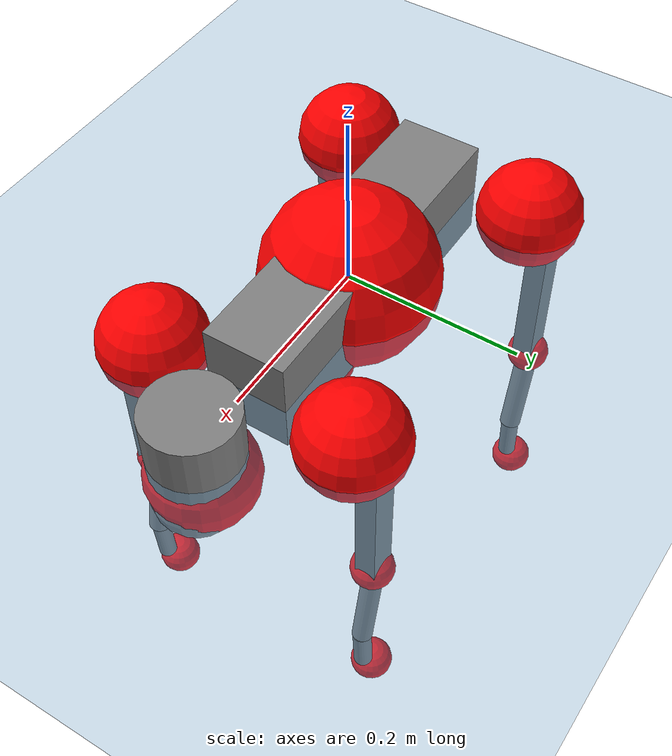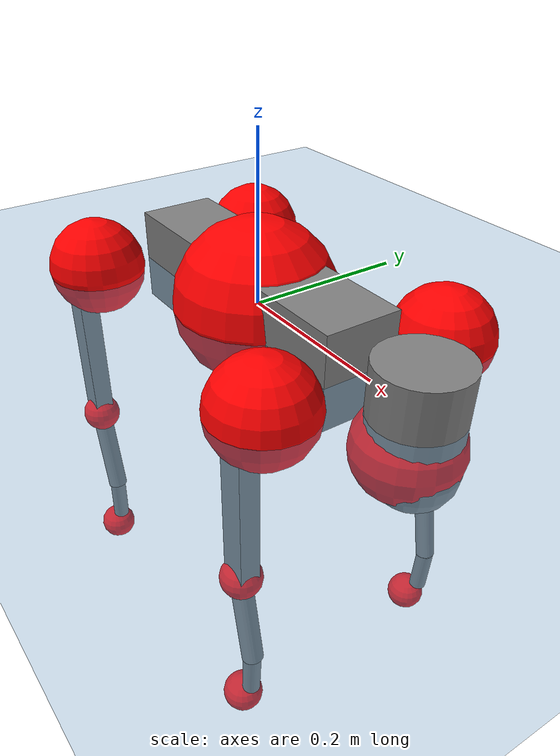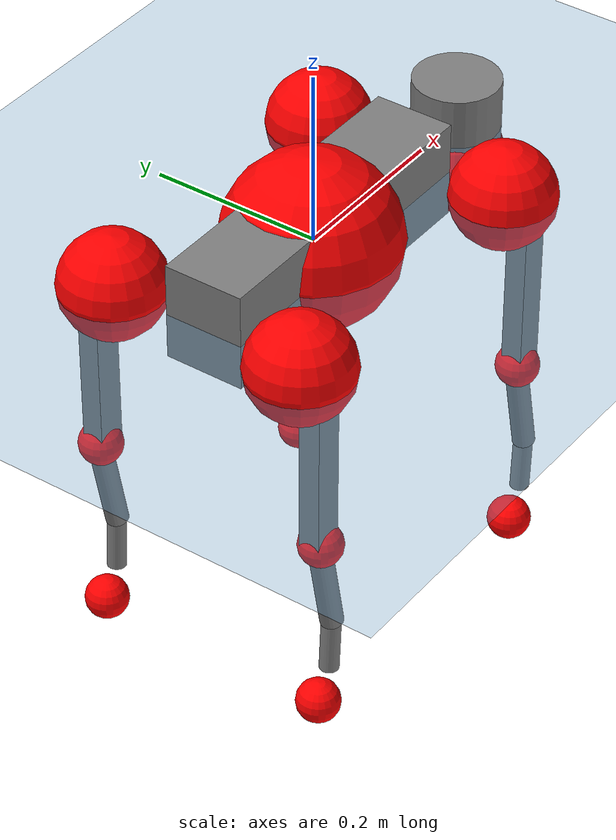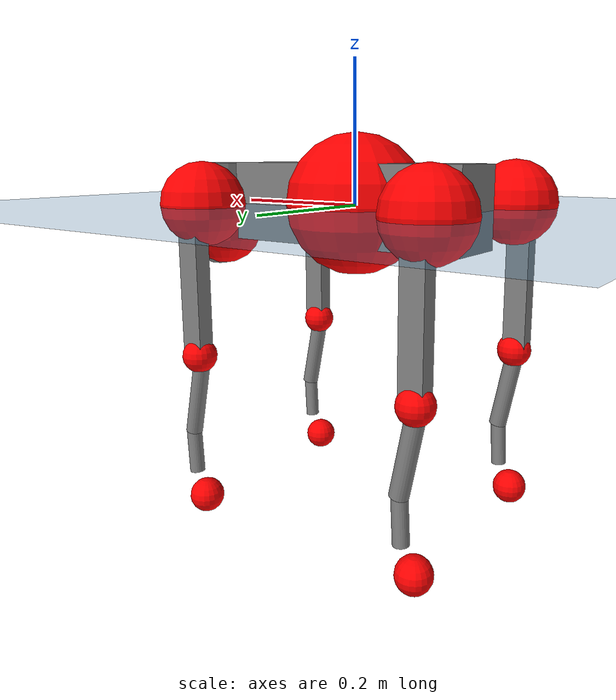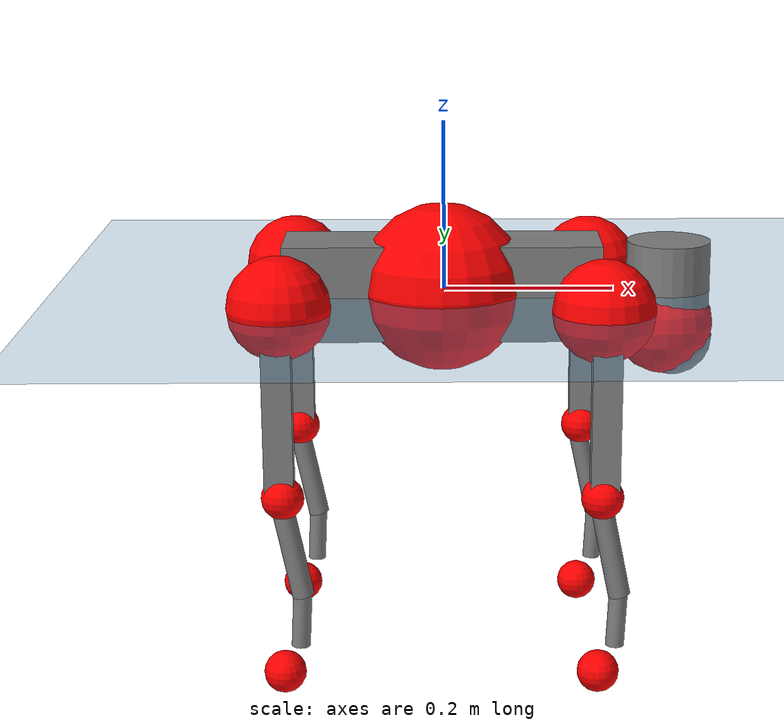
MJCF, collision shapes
<mujoco model="go2">
  <compiler angle="radian" assetdir="assets" balanceinertia="true" inertiafromgeom="false"/>

  <option timestep="0.005" density="1.2" viscosity="2e-05"/>

  <size nkey="1"/>

  <visual>
    <quality shadowsize="8192"/>
    <map shadowclip="0.5"/>
  </visual>

  <default>
    <default class="/">
      <geom contype="0" conaffinity="0" group="1" solref="-1000 -80"/>
      <site size="0.01 0.005 0.005" group="5"/>
      <general forcelimited="true" biastype="affine" gainprm="20" biasprm="0 -20 -0.5"/>
      <default class="go2">
        <joint armature="0.01" damping="0.01" frictionloss="0.2"/>
        <geom condim="1" margin="0.001"/>
        <default class="visual">
          <geom type="mesh" group="2"/>
        </default>
        <default class="collision">
          <geom group="3"/>
          <default class="foot">
            <geom size="0.022 0 0" condim="6" priority="1" friction="0.8 0.02 0.01" solimp="0.015 1 0.022"/>
          </default>
        </default>
        <default class="reward_collision_sphere">
          <geom group="5" rgba="1 0 0 1"/>
        </default>
      </default>
    </default>
  </default>

  <asset>
    <texture type="skybox" colorspace="auto" name="//unnamed_texture_0" builtin="gradient" rgb1="0.95 0.95 0.95" rgb2="0.95 0.95 0.95" width="100" height="600"/>
    <texture type="2d" colorspace="auto" name="texplane" builtin="checker" rgb1="0.345 0.575 0.748" rgb2="0.345 0.575 0.748" markrgb="1 1 1" width="512" height="512"/>
    <material name="MatPlane" class="/" texture="texplane" texuniform="true" texrepeat="2 2" specular="0.9"/>
    <material name="metal" class="/" rgba="0.9 0.95 0.95 1"/>
    <material name="black" class="/" rgba="0 0 0 1"/>
    <material name="white" class="/"/>
    <material name="gray" class="/" rgba="0.671705 0.692426 0.77427 1"/>
    <mesh name="base_0" class="/" file="base_0.obj"/>
    <mesh name="base_1" class="/" file="base_1.obj"/>
    <mesh name="base_2" class="/" file="base_2.obj"/>
    <mesh name="base_3" class="/" file="base_3.obj"/>
    <mesh name="base_4" class="/" file="base_4.obj"/>
    <mesh name="hip_0" class="/" file="hip_0.obj"/>
    <mesh name="hip_1" class="/" file="hip_1.obj"/>
    <mesh name="thigh_0" class="/" file="thigh_0.obj"/>
    <mesh name="thigh_1" class="/" file="thigh_1.obj"/>
    <mesh name="thigh_mirror_0" class="/" file="thigh_mirror_0.obj"/>
    <mesh name="thigh_mirror_1" class="/" file="thigh_mirror_1.obj"/>
    <mesh name="calf_0" class="/" file="calf_0.obj"/>
    <mesh name="calf_1" class="/" file="calf_1.obj"/>
    <mesh name="calf_mirror_0" class="/" file="calf_mirror_0.obj"/>
    <mesh name="calf_mirror_1" class="/" file="calf_mirror_1.obj"/>
    <mesh name="foot" class="/" file="foot.obj"/>
  </asset>

  <worldbody>
    <geom name="floor" class="/" size="100 100 0.125" type="plane" group="0" material="MatPlane"/>
    <light name="toplight_shadow" class="/" pos="0 0 5" dir="0.0990148 0.0990148 -0.990148" type="directional" ambient="0.04 0.04 0.04" diffuse="0.55 0.55 0.55" specular="0.12 0.12 0.12"/>
    <light name="toplight_fill" class="/" pos="0 0 5" dir="0.0990148 0.0990148 -0.990148" type="directional" castshadow="false" ambient="0.04 0.04 0.04" diffuse="0.3 0.3 0.3" specular="0.08 0.08 0.08"/>
    <body name="trunk" childclass="go2" pos="-0.00248235 0.000168889 0.00269307" quat="0.999999 0.00117853 0.00043445 0.000133026">
      <inertial pos="0.0229662 0.000441873 -0.00821293" quat="-0.00917102 0.71192 -0.00869112 0.702147" mass="6.67293" diaginertia="0.0795516 0.11191 0.0278139"/>
      <joint name="//unnamed_joint_0" type="free" armature="0" damping="0" frictionloss="0"/>
      <geom name="//unnamed_geom_1" class="visual" material="black" mesh="base_0"/>
      <geom name="//unnamed_geom_2" class="visual" material="black" mesh="base_1"/>
      <geom name="//unnamed_geom_3" class="visual" material="black" mesh="base_2"/>
      <geom name="//unnamed_geom_4" class="visual" material="white" mesh="base_3"/>
      <geom name="//unnamed_geom_5" class="visual" material="gray" mesh="base_4"/>
      <geom name="trunk_1" class="collision" size="0.18738 0.0465712 0.056782" type="box"/>
      <geom name="trunk_2" class="collision" size="0.0498087 0.0448279" pos="0.268722 0 0.0102117" type="cylinder"/>
      <geom name="trunk_3" class="collision" size="0.0468202" pos="0.276265 0 -0.0612701"/>
      <geom name="//unnamed_geom_9" class="reward_collision_sphere" size="0.0996175"/>
      <geom name="//unnamed_geom_10" class="reward_collision_sphere" size="0.0597705" pos="0.264007 0 -0.0459526"/>
      <site name="imu" pos="-0.0316714 0.000608807 0.0505504" size="0.00996175"/>
      <camera name="track" pos="0 -2.04894 0" quat="0.707107 0.707107 0 0" mode="trackcom"/>
      <camera name="ego_camera" pos="0.294179 0 0.0459526" quat="-0.5 -0.5 0.5 0.5"/>
      <body name="FL_hip" pos="0.181591 0.0476308 -0.000414983" quat="1 -0.000441163 -0.000365759 0.000335988">
        <inertial pos="-0.00500643 0.00140247 -0.000128406" quat="0.497746 0.497392 0.505544 0.499275" mass="0.716387" diaginertia="0.000676923 0.000698375 0.000556604"/>
        <joint name="FL_hip_joint" pos="0 0 0" axis="0.999904 0.00996726 -0.00957776" range="-1.04415 1.10005" armature="0.00965934" damping="0.017477" frictionloss="0.185849"/>
        <geom name="//unnamed_geom_11" class="visual" material="metal" mesh="hip_0"/>
        <geom name="//unnamed_geom_12" class="visual" material="gray" mesh="hip_1"/>
        <geom name="//unnamed_geom_13" class="collision" size="0.045824 0.0199235" pos="0 0.0819578 0" quat="0.707107 0.707107 0 0" type="cylinder"/>
        <geom name="//unnamed_geom_14" class="reward_collision_sphere" size="0.0597705" pos="0 0.071713 0"/>
        <body name="FL_thigh" pos="-0.00234891 0.0956387 0.00179279" quat="1 9.57161e-05 -0.000126762 -0.000560749">
          <inertial pos="-0.00426324 -0.0226502 -0.0312878" quat="0.829076 0.0867482 -0.0197744 0.552012" mass="1.11796" diaginertia="0.00438753 0.006771 0.00100317"/>
          <joint name="FL_thigh_joint" pos="0 0 0" axis="0.0104919 0.999941 0.00280864" range="-1.58493 3.51862" armature="0.00872025" damping="0.0094031" frictionloss="0.179367"/>
          <geom name="//unnamed_geom_15" class="visual" material="metal" mesh="thigh_0"/>
          <geom name="//unnamed_geom_16" class="visual" material="gray" mesh="thigh_1"/>
          <geom name="//unnamed_geom_17" class="collision" size="0.106093 0.0122031 0.016935" pos="0 0 -0.108754" quat="0.707107 0 0.707107 0" type="box"/>
          <body name="FL_calf" pos="-0.00147369 -0.000964571 -0.219226" quat="0.999999 8.51382e-05 0.000966677 -0.000446468">
            <inertial pos="0.00671824 0.00165579 -0.146468" quat="0.711409 -0.00286653 -0.0035774 0.702764" mass="0.23151" diaginertia="0.00108736 0.00162603 5.92171e-05"/>
            <joint name="FL_calf_joint" pos="0 0 0" axis="0.0010868 0.999999 0.000519862" stiffness="0.00279736" range="-2.69351 -0.856105" armature="0.0111981" damping="0.00385054" frictionloss="0.190262"/>
            <geom name="//unnamed_geom_18" class="visual" material="gray" mesh="calf_0"/>
            <geom name="//unnamed_geom_19" class="visual" material="black" mesh="calf_1"/>
            <geom name="FL_calf0" class="collision" size="0.0119541 0.0597705" pos="0.00754306 0 -0.0612701" quat="0.994493 0 -0.104807 0" type="cylinder"/>
            <geom name="//unnamed_geom_21" class="collision" size="0.0109579 0.0323757" pos="0.0188577 0 -0.151133" quat="0.999688 0 0.0249974 0" type="cylinder"/>
            <geom name="//unnamed_geom_22" class="visual" pos="0 0 -0.217509" quat="1 0 0 0" material="black" mesh="foot"/>
            <geom name="FL_foot" class="foot" size="0.0181834" pos="-0.00188577 0 -0.217509"/>
            <geom name="//unnamed_geom_24" class="reward_collision_sphere" size="0.0249044"/>
            <geom name="//unnamed_geom_25" class="reward_collision_sphere" size="0.0249044" pos="-0.00188577 0 -0.217509"/>
            <site name="FL_foot" class="foot" pos="-0.00188577 0 -0.217509" size="0.00996175"/>
          </body>
        </body>
      </body>
      <body name="FR_hip" pos="0.18416 -0.0451752 -0.00208405" quat="1 0.000295932 9.47886e-05 0.000597307">
        <inertial pos="-0.00665794 0.00148992 -0.00173892" quat="0.496208 0.509354 0.506241 0.48791" mass="0.682904" diaginertia="0.000670646 0.000674912 0.000539784"/>
        <joint name="FR_hip_joint" pos="0 0 0" axis="1 -0.00022809 0.000548872" stiffness="0.0130785" range="-1.01335 1.06344" armature="0.00946981" damping="0.00831875" frictionloss="0.226093"/>
        <geom name="//unnamed_geom_26" class="visual" pos="0 2.87753e-11 1.23423e-09" quat="4.63268e-05 1 0 0" material="metal" mesh="hip_0"/>
        <geom name="//unnamed_geom_27" class="visual" pos="0 4.66484e-11 -3.05273e-09" quat="4.63268e-05 1 0 0" material="gray" mesh="hip_1"/>
        <geom name="//unnamed_geom_28" class="collision" size="0.045824 0.0199235" pos="0 -0.0819578 0" quat="0.707107 0.707107 0 0" type="cylinder"/>
        <geom name="//unnamed_geom_29" class="reward_collision_sphere" size="0.0597705" pos="0 -0.071713 0"/>
        <body name="FR_thigh" pos="0.00216698 -0.0994867 0.00120194" quat="1 -1.76524e-05 -0.00018216 -0.000148358">
          <inertial pos="-0.00535661 0.0203481 -0.0352975" quat="0.550634 -0.0289087 0.0876404 0.82963" mass="1.11579" diaginertia="0.00423871 0.00644293 0.000933356"/>
          <joint name="FR_thigh_joint" pos="0 0 0" axis="-0.01014 -0.999947 -0.00156395" stiffness="0.00106332" range="-3.43749 1.5251" armature="0.00928906" damping="0.0135283" frictionloss="0.225341"/>
          <geom name="//unnamed_geom_30" class="visual" material="metal" mesh="thigh_mirror_0"/>
          <geom name="//unnamed_geom_31" class="visual" material="gray" mesh="thigh_mirror_1"/>
          <geom name="//unnamed_geom_32" class="collision" size="0.106093 0.0122031 0.016935" pos="0 0 -0.108754" quat="0.707107 0 0.707107 0" type="box"/>
          <body name="FR_calf" pos="-0.0021977 0.000204844 -0.216368" quat="1 0.000661801 -0.0003676 -0.000589173">
            <inertial pos="0.00538274 0.000753675 -0.144152" quat="0.707198 -0.0141273 0.00497885 0.706857" mass="0.245367" diaginertia="0.00115204 0.00160735 5.89778e-05"/>
            <joint name="FR_calf_joint" pos="0 0 0" axis="0.000924353 -0.999998 -0.00188663" stiffness="0.00621141" range="0.872539 2.68325" armature="0.0100854" damping="0" frictionloss="0.224411"/>
            <geom name="//unnamed_geom_33" class="visual" material="gray" mesh="calf_mirror_0"/>
            <geom name="//unnamed_geom_34" class="visual" material="black" mesh="calf_mirror_1"/>
            <geom name="FR_calf0" class="collision" size="0.0129503 0.0597705" pos="0.00942883 0 -0.0612701" quat="0.995004 0 -0.0998334 0" type="cylinder"/>
            <geom name="//unnamed_geom_36" class="collision" size="0.0109579 0.0323757" pos="0.0188577 0 -0.151133" quat="0.999688 0 0.0249974 0" type="cylinder"/>
            <geom name="//unnamed_geom_37" class="visual" pos="0 0 -0.217509" quat="1 0 0 0" material="black" mesh="foot"/>
            <geom name="FR_foot" class="foot" size="0.0223735" pos="-0.00188577 0 -0.217509"/>
            <geom name="//unnamed_geom_39" class="reward_collision_sphere" size="0.0249044"/>
            <geom name="//unnamed_geom_40" class="reward_collision_sphere" size="0.0249044" pos="-0.00188577 0 -0.217509"/>
            <site name="FR_foot" class="foot" pos="-0.00188577 0 -0.217509" size="0.00996175"/>
          </body>
        </body>
      </body>
      <body name="RL_hip" pos="-0.183078 0.0462859 0.00104554" quat="1 0.000167943 -0.000430169 -0.000299946">
        <inertial pos="0.00455519 0.00346674 0.00317128" quat="0.506317 0.498107 0.496302 0.499216" mass="0.655718" diaginertia="0.000616389 0.000638825 0.000506776"/>
        <joint name="RL_hip_joint" pos="0 0 0" axis="-0.999993 0.00356222 0.00126653" range="-1.02986 1.09799" armature="0.00961198" damping="0.0169907" frictionloss="0.19966"/>
        <geom name="//unnamed_geom_41" class="visual" pos="6.81995e-10 0 1.33687e-07" quat="4.63268e-05 0 1 0" material="metal" mesh="hip_0"/>
        <geom name="//unnamed_geom_42" class="visual" pos="1.1056e-09 0 1.18561e-07" quat="4.63268e-05 0 1 0" material="gray" mesh="hip_1"/>
        <geom name="//unnamed_geom_43" class="collision" size="0.045824 0.0199235" pos="0 0.0819578 0" quat="0.707107 0.707107 0 0" type="cylinder"/>
        <geom name="//unnamed_geom_44" class="reward_collision_sphere" size="0.0597705" pos="0 0.071713 0"/>
        <body name="RL_thigh" pos="4.17094e-05 0.0945264 0.00128499" quat="0.999999 -0.000716072 -0.000535392 0.000981598">
          <inertial pos="-0.000362893 -0.0198808 -0.0313267" quat="0.830694 0.0852227 -0.0164345 0.549923" mass="1.08649" diaginertia="0.00452051 0.00659263 0.000994962"/>
          <joint name="RL_thigh_joint" pos="0 0 0" axis="0.0109976 0.99988 -0.0108828" range="-0.567941 4.51097" armature="0.0109888" damping="0.00556403" frictionloss="0.194794"/>
          <geom name="//unnamed_geom_45" class="visual" material="metal" mesh="thigh_0"/>
          <geom name="//unnamed_geom_46" class="visual" material="gray" mesh="thigh_1"/>
          <geom name="//unnamed_geom_47" class="collision" size="0.106093 0.0122031 0.016935" pos="0 0 -0.108754" quat="0.707107 0 0.707107 0" type="box"/>
          <body name="RL_calf" pos="-0.00217045 0.0012661 -0.220394" quat="1 -9.61839e-05 0.000144155 -0.000101438">
            <inertial pos="0.00811668 -0.00146232 -0.147175" quat="0.70987 0.00211425 -0.0125918 0.704217" mass="0.227514" diaginertia="0.00104776 0.00157304 5.84673e-05"/>
            <joint name="RL_calf_joint" pos="0 0 0" axis="-0.00808908 0.999967 0.000971651" stiffness="0.0104363" range="-2.73287 -0.85798" armature="0.00916768" damping="0.000231518" frictionloss="0.200212"/>
            <geom name="//unnamed_geom_48" class="visual" material="gray" mesh="calf_0"/>
            <geom name="//unnamed_geom_49" class="visual" material="black" mesh="calf_1"/>
            <geom name="RL_calf0" class="collision" size="0.0129503 0.0597705" pos="0.00942883 0 -0.0612701" quat="0.995004 0 -0.0998334 0" type="cylinder"/>
            <geom name="//unnamed_geom_51" class="collision" size="0.0109579 0.0323757" pos="0.0188577 0 -0.151133" quat="0.999688 0 0.0249974 0" type="cylinder"/>
            <geom name="//unnamed_geom_52" class="visual" pos="0 0 -0.217509" quat="1 0 0 0" material="black" mesh="foot"/>
            <geom name="RL_foot" class="foot" size="0.020426" pos="-0.00188577 0 -0.217509"/>
            <geom name="//unnamed_geom_54" class="reward_collision_sphere" size="0.0249044"/>
            <geom name="//unnamed_geom_55" class="reward_collision_sphere" size="0.0249044" pos="-0.00188577 0 -0.217509"/>
            <site name="RL_foot" class="foot" pos="-0.00188577 0 -0.217509" size="0.00996175"/>
          </body>
        </body>
      </body>
      <body name="RR_hip" pos="-0.185474 -0.0470642 0.00313374" quat="1 8.59098e-05 0.000805882 4.78264e-05">
        <inertial pos="0.00327017 0.00022757 0.00179785" quat="0.509635 0.485445 0.493386 0.511064" mass="0.693276" diaginertia="0.000684884 0.00068863 0.000548877"/>
        <joint name="RR_hip_joint" pos="0 0 0" axis="-0.999977 0.00672735 -0.000670074" range="-1.02888 1.09295" armature="0.00860057" damping="0" frictionloss="0.200354"/>
        <geom name="//unnamed_geom_56" class="visual" pos="-6.79171e-10 2.87753e-11 1.32453e-07" quat="2.14617e-09 4.63268e-05 4.63268e-05 -1" material="metal" mesh="hip_0"/>
        <geom name="//unnamed_geom_57" class="visual" pos="-1.11258e-09 4.66483e-11 1.21614e-07" quat="2.14617e-09 4.63268e-05 4.63268e-05 -1" material="gray" mesh="hip_1"/>
        <geom name="//unnamed_geom_58" class="collision" size="0.045824 0.0199235" pos="0 -0.0819578 0" quat="0.707107 0.707107 0 0" type="cylinder"/>
        <geom name="//unnamed_geom_59" class="reward_collision_sphere" size="0.0597705" pos="0 -0.071713 0"/>
        <body name="RR_thigh" pos="-0.0021953 -0.0959546 0.00149446" quat="1 0.000270533 0.000149762 8.416e-05">
          <inertial pos="-0.00417165 0.0248103 -0.0309818" quat="0.551616 -0.0189907 0.0842105 0.829619" mass="1.1065" diaginertia="0.00431168 0.00643272 0.000942024"/>
          <joint name="RR_thigh_joint" pos="0 0 0" axis="0.00646711 -0.999948 0.00783043" range="-4.50053 0.470806" armature="0.00907148" damping="0.0204585" frictionloss="0.203415"/>
          <geom name="//unnamed_geom_60" class="visual" material="metal" mesh="thigh_mirror_0"/>
          <geom name="//unnamed_geom_61" class="visual" material="gray" mesh="thigh_mirror_1"/>
          <geom name="//unnamed_geom_62" class="collision" size="0.106093 0.0122031 0.016935" pos="0 0 -0.108754" quat="0.707107 0 0.707107 0" type="box"/>
          <body name="RR_calf" pos="0.00336633 -0.000938938 -0.2205" quat="1 0.000549325 0.000561871 0.00021166">
            <inertial pos="0.00593856 -0.00176498 -0.142038" quat="0.704169 -0.00686796 0.00142253 0.709998" mass="0.233878" diaginertia="0.00108946 0.00164906 5.74129e-05"/>
            <joint name="RR_calf_joint" pos="0 0 0" axis="0.0109863 -0.999902 -0.00866088" stiffness="0.00646206" range="0.838587 2.70112" armature="0.0100578" damping="0.000145461" frictionloss="0.224414"/>
            <geom name="//unnamed_geom_63" class="visual" material="gray" mesh="calf_mirror_0"/>
            <geom name="//unnamed_geom_64" class="visual" material="black" mesh="calf_mirror_1"/>
            <geom name="RR_calf0" class="collision" size="0.0129503 0.0597705" pos="0.00942883 0 -0.0612701" quat="0.995004 0 -0.0998334 0" type="cylinder"/>
            <geom name="//unnamed_geom_66" class="collision" size="0.0109579 0.0323757" pos="0.0188577 0 -0.151133" quat="0.999688 0 0.0249974 0" type="cylinder"/>
            <geom name="//unnamed_geom_67" class="visual" pos="0 0 -0.217509" quat="1 0 0 0" material="black" mesh="foot"/>
            <geom name="RR_foot" class="foot" size="0.0212817" pos="-0.00188577 0 -0.217509"/>
            <geom name="//unnamed_geom_69" class="reward_collision_sphere" size="0.0249044"/>
            <geom name="//unnamed_geom_70" class="reward_collision_sphere" size="0.0249044" pos="-0.00188577 0 -0.217509"/>
            <site name="RR_foot" class="foot" pos="-0.00188577 0 -0.217509" size="0.00996175"/>
          </body>
        </body>
      </body>
    </body>
  </worldbody>

  <contact>
    <pair class="/" geom1="floor" geom2="FL_foot" name="//unnamed_contact_0"/>
    <pair class="/" geom1="floor" geom2="FR_foot" name="//unnamed_contact_1"/>
    <pair class="/" geom1="floor" geom2="RL_foot" name="//unnamed_contact_2"/>
    <pair class="/" geom1="floor" geom2="RR_foot" name="//unnamed_contact_3"/>
  </contact>

  <actuator>
    <general name="FL_hip" class="/" joint="FL_hip_joint" forcerange="-23.2329 23.2329" gainprm="18.9895" biasprm="0 -18.9895 -0.473168"/>
    <general name="FL_thigh" class="/" joint="FL_thigh_joint" forcerange="-25.35 25.35" gainprm="18.9895" biasprm="0 -18.9895 -0.473168"/>
    <general name="FL_calf" class="/" joint="FL_calf_joint" forcerange="-40.5931 40.5931" gainprm="18.9895" biasprm="0 -18.9895 -0.473168"/>
    <general name="FR_hip" class="/" joint="FR_hip_joint" forcerange="-22.7974 22.7974" gainprm="18.9895" biasprm="0 -18.9895 -0.473168"/>
    <general name="FR_thigh" class="/" joint="FR_thigh_joint" forcerange="-24.522 24.522" gainprm="18.9895" biasprm="0 -18.9895 -0.473168"/>
    <general name="FR_calf" class="/" joint="FR_calf_joint" forcerange="-41.6223 41.6223" gainprm="18.9895" biasprm="0 -18.9895 -0.473168"/>
    <general name="RL_hip" class="/" joint="RL_hip_joint" forcerange="-24.0453 24.0453" gainprm="18.9895" biasprm="0 -18.9895 -0.473168"/>
    <general name="RL_thigh" class="/" joint="RL_thigh_joint" forcerange="-22.9106 22.9106" gainprm="18.9895" biasprm="0 -18.9895 -0.473168"/>
    <general name="RL_calf" class="/" joint="RL_calf_joint" forcerange="-49.7297 49.7297" gainprm="18.9895" biasprm="0 -18.9895 -0.473168"/>
    <general name="RR_hip" class="/" joint="RR_hip_joint" forcerange="-22.491 22.491" gainprm="18.9895" biasprm="0 -18.9895 -0.473168"/>
    <general name="RR_thigh" class="/" joint="RR_thigh_joint" forcerange="-23.1526 23.1526" gainprm="18.9895" biasprm="0 -18.9895 -0.473168"/>
    <general name="RR_calf" class="/" joint="RR_calf_joint" forcerange="-49.6752 49.6752" gainprm="18.9895" biasprm="0 -18.9895 -0.473168"/>
  </actuator>

  <sensor>
    <gyro site="imu" name="imu_angular_velocity"/>
    <velocimeter site="imu" name="imu_linear_velocity"/>
    <framelinvel objtype="site" objname="FL_foot" name="FL_foot_global_linear_velocity"/>
    <framelinvel objtype="site" objname="FR_foot" name="FR_foot_global_linear_velocity"/>
    <framelinvel objtype="site" objname="RL_foot" name="RL_foot_global_linear_velocity"/>
    <framelinvel objtype="site" objname="RR_foot" name="RR_foot_global_linear_velocity"/>
  </sensor>

  <keyframe>
    <key name="home" qpos="0 0 0.325 1 0 0 0 0.1 0.8 -1.5 -0.1 -0.8 1.5 -0.1 0.8 -1.5 0.1 -0.8 1.5"/>
  </keyframe>
</mujoco>
